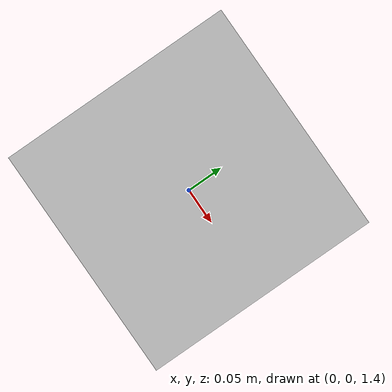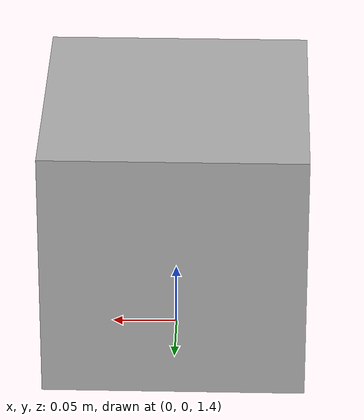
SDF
<?xml version="1.0" ?>
<sdf version="1.4">
  <world name="default">
    <include>
      <uri>model://ground_plane</uri>
    </include>
    <include>
      <uri>model://sun</uri>
    </include>

    <!-- Only one ROS interface plugin is required per world, as any other plugin can connect a Gazebo
         topic to a ROS topic (or vise versa). -->
    <plugin name="ros_interface_plugin" filename="librotors_gazebo_ros_interface_plugin.so"/>
    <model name="uwb_anchor0">
      <pose>0 0 1.5 0 0 0</pose>
      <static>1</static>
      <link name="link">
        <visual name="visual">
          <geometry>
            <box>
              <size>0.2 0.2 0.2</size>
            </box>
          </geometry>
        </visual>
      </link>
    </model>
    <spherical_coordinates>
      <surface_model>EARTH_WGS84</surface_model>
      <latitude_deg>47.3667</latitude_deg>
      <longitude_deg>8.5500</longitude_deg>
      <elevation>500.0</elevation>
      <heading_deg>0</heading_deg>
    </spherical_coordinates>
    <physics type='ode'>
      <ode>
        <solver>
          <type>quick</type>
          <iters>1000</iters>
          <sor>1.3</sor>
        </solver>
        <constraints>
          <cfm>0</cfm>
          <erp>0.2</erp>
          <contact_max_correcting_vel>100</contact_max_correcting_vel>
          <contact_surface_layer>0.001</contact_surface_layer>
        </constraints>
      </ode>
      <max_step_size>0.01</max_step_size>
      <real_time_factor>1</real_time_factor>
      <real_time_update_rate>100</real_time_update_rate>
      <gravity>0 0 -9.8</gravity>
    </physics>
  </world>
</sdf>
